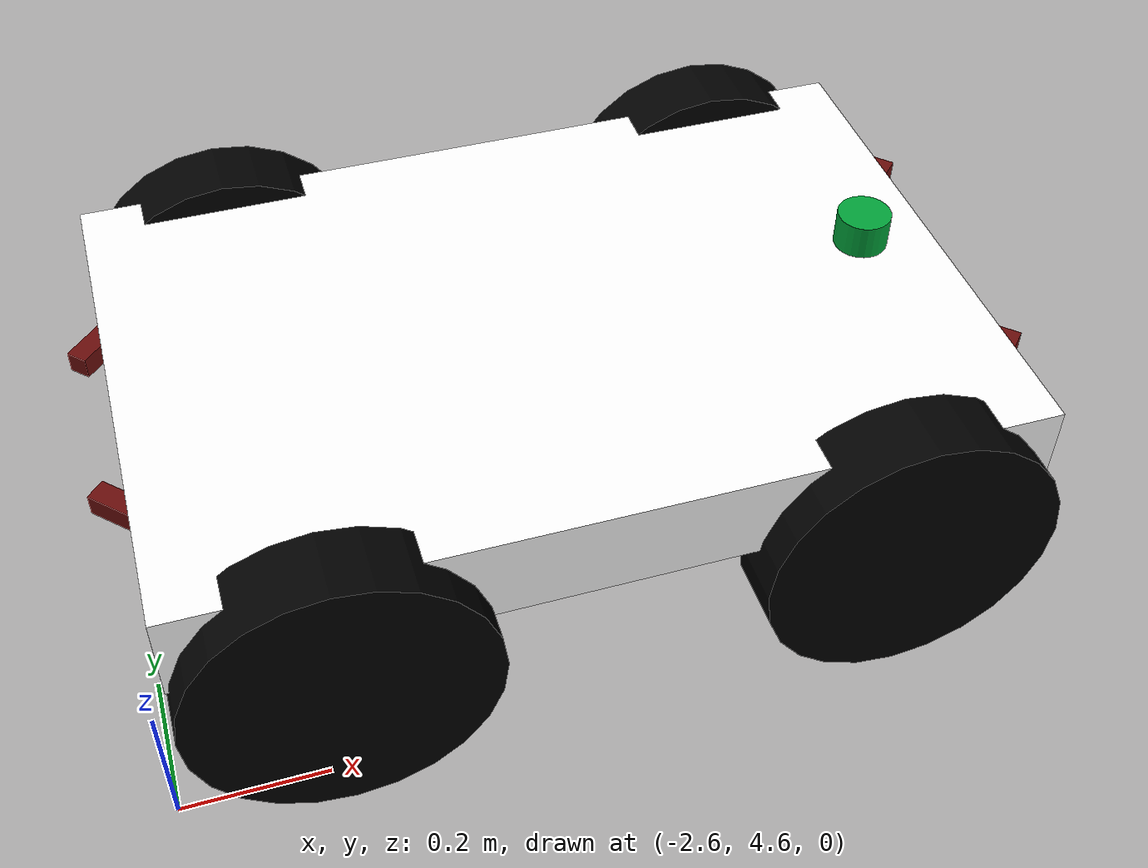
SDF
<sdf version="1.7">
 <world name="default">
  <gravity>0 0 -9.8</gravity>
  <magnetic_field>6e-06 2.3e-05 -4.2e-05</magnetic_field>
  <atmosphere type="adiabatic"/>
  <physics name="default_physics" default="0" type="ode">
   <max_step_size>0.001</max_step_size>
   <real_time_factor>1</real_time_factor>
   <real_time_update_rate>1000</real_time_update_rate>
  </physics>
  <scene>
   <ambient>0.4 0.4 0.4 1</ambient>
   <background>0.7 0.7 0.7 1</background>
   <shadows>1</shadows>
   <grid>0</grid>
   <origin_visual>0</origin_visual>
  </scene>
  <spherical_coordinates>
   <surface_model>EARTH_WGS84</surface_model>
   <latitude_deg>0</latitude_deg>
   <longitude_deg>0</longitude_deg>
   <elevation>0</elevation>
   <heading_deg>0</heading_deg>
  </spherical_coordinates>
  <light name="RetailShop_CeilingLight_001" type="point">
   <pose>2.77442 -3.62815 3.17847 0 -0 0</pose>
   <diffuse>0.5 0.5 0.5 1</diffuse>
   <specular>0.1 0.1 0.1 1</specular>
   <attenuation>
    <range>20</range>
    <constant>0.32</constant>
    <linear>0.01</linear>
    <quadratic>0.03</quadratic>
   </attenuation>
   <cast_shadows>0</cast_shadows>
   <direction>0 0 -1</direction>
   <spot><inner_angle>0</inner_angle><outer_angle>0</outer_angle><falloff>0</falloff></spot>
  </light>
  <light name="RetailShop_CeilingLight_002" type="point">
   <pose>5.38399 -5.38371 3.17847 0 -0 0</pose>
   <diffuse>0.5 0.5 0.5 1</diffuse>
   <specular>0.1 0.1 0.1 1</specular>
   <attenuation>
    <range>20</range>
    <constant>0.32</constant>
    <linear>0.01</linear>
    <quadratic>0.03</quadratic>
   </attenuation>
   <cast_shadows>0</cast_shadows>
   <direction>0 0 -1</direction>
   <spot><inner_angle>0</inner_angle><outer_angle>0</outer_angle><falloff>0</falloff></spot>
  </light>
  <light name="RetailShop_CeilingLight_003" type="point">
   <pose>5.38399 0.04192 3.17847 0 -0 0</pose>
   <diffuse>0.5 0.5 0.5 1</diffuse>
   <specular>0.1 0.1 0.1 1</specular>
   <attenuation>
    <range>20</range>
    <constant>0.32</constant>
    <linear>0.01</linear>
    <quadratic>0.03</quadratic>
   </attenuation>
   <cast_shadows>0</cast_shadows>
   <direction>0 0 -1</direction>
   <spot><inner_angle>0</inner_angle><outer_angle>0</outer_angle><falloff>0</falloff></spot>
  </light>
  <light name="RetailShop_CeilingLight_004" type="point">
   <pose>-3.21067 -5.38371 3.17847 0 -0 0</pose>
   <diffuse>0.5 0.5 0.5 1</diffuse>
   <specular>0.1 0.1 0.1 1</specular>
   <attenuation>
    <range>20</range>
    <constant>0.32</constant>
    <linear>0.01</linear>
    <quadratic>0.03</quadratic>
   </attenuation>
   <cast_shadows>0</cast_shadows>
   <direction>0 0 -1</direction>
   <spot><inner_angle>0</inner_angle><outer_angle>0</outer_angle><falloff>0</falloff></spot>
  </light>
  <light name="RetailShop_CeilingLight_005" type="point">
   <pose>-3.271 2.68593 3.17847 0 -0 0</pose>
   <diffuse>0.5 0.5 0.5 1</diffuse>
   <specular>0.1 0.1 0.1 1</specular>
   <attenuation>
    <range>20</range>
    <constant>0.32</constant>
    <linear>0.01</linear>
    <quadratic>0.03</quadratic>
   </attenuation>
   <cast_shadows>0</cast_shadows>
   <direction>0 0 -1</direction>
   <spot><inner_angle>0</inner_angle><outer_angle>0</outer_angle><falloff>0</falloff></spot>
  </light>
  <light name="RetailShop_CeilingLight_006" type="point">
   <pose>1.4932 4.69237 3.17847 0 -0 0</pose>
   <diffuse>0.5 0.5 0.5 1</diffuse>
   <specular>0.1 0.1 0.1 1</specular>
   <attenuation>
    <range>20</range>
    <constant>0.32</constant>
    <linear>0.01</linear>
    <quadratic>0.03</quadratic>
   </attenuation>
   <cast_shadows>0</cast_shadows>
   <direction>0 0 -1</direction>
   <spot><inner_angle>0</inner_angle><outer_angle>0</outer_angle><falloff>0</falloff></spot>
  </light>
  <audio><device>default</device></audio>
  <model name="p4_amr">
   <link name="base_footprint">
    <inertial>
     <pose>0.001361 -0.001731 0.303659 0 -0 0</pose>
     <mass>50.91</mass>
     <inertia>
      <ixx>2.57288</ixx>
      <ixy>0.00715369</ixy>
      <ixz>-0.00592129</ixz>
      <iyy>5.83598</iyy>
      <iyz>0.00119733</iyz>
      <izz>8.26683</izz>
     </inertia>
    </inertial>
    <collision name="base_footprint_fixed_joint_lump__base_link_collision">
     <pose>0 0 0.3032 0 -0 0</pose>
     <geometry><box><size>1.154 0.768 0.129</size></box></geometry>
    </collision>
    <collision name="base_footprint_fixed_joint_lump__camera_1_link_collision_1">
     <pose>0.57 0.167 0.317248 0 0 -0.7853</pose>
     <geometry><box><size>0.03 0.124 0.03</size></box></geometry>
    </collision>
    <collision name="base_footprint_fixed_joint_lump__camera_2_link_collision_2">
     <pose>0.57 -0.167 0.317248 0 -0 0.7853</pose>
     <geometry><box><size>0.03 0.124 0.03</size></box></geometry>
    </collision>
    <collision name="base_footprint_fixed_joint_lump__camera_3_link_collision_3">
     <pose>0.328397 -0.326339 0.317248 0 0 -2.44346</pose>
     <geometry><box><size>0.03 0.124 0.03</size></box></geometry>
    </collision>
    <collision name="base_footprint_fixed_joint_lump__camera_4_link_collision_4">
     <pose>-0.163297 -0.326339 0.317248 0 0 -0.698132</pose>
     <geometry><box><size>0.03 0.124 0.03</size></box></geometry>
    </collision>
    <collision name="base_footprint_fixed_joint_lump__camera_5_link_collision_5">
     <pose>-0.57 -0.167 0.317248 0 0 -2.35619</pose>
     <geometry><box><size>0.03 0.124 0.03</size></box></geometry>
    </collision>
    <collision name="base_footprint_fixed_joint_lump__camera_6_link_collision_6">
     <pose>-0.57 0.167 0.317248 0 -0 2.35619</pose>
     <geometry><box><size>0.03 0.124 0.03</size></box></geometry>
    </collision>
    <collision name="base_footprint_fixed_joint_lump__laser_collision_7">
     <pose>0.47 0 0.3982 0 -0 0</pose>
     <geometry><cylinder><length>0.05</length><radius>0.0375</radius></cylinder></geometry>
    </collision>
    <visual name="base_footprint_fixed_joint_lump__base_link_visual">
     <pose>0 0 0.3032 0 -0 0</pose>
     <geometry><box><size>1.154 0.768 0.129</size></box></geometry>
     <material><ambient>1 1 1 1</ambient><diffuse>1 1 1 1</diffuse><specular>0.99 0.99 0.99 1</specular></material>
    </visual>
    <visual name="base_footprint_fixed_joint_lump__camera_1_link_visual_1">
     <pose>0.57 0.167 0.317248 0 0 -0.7853</pose>
     <geometry><box><size>0.03 0.124 0.03</size></box></geometry>
     <material>
      <ambient>0.416 0.051 0.047 1</ambient>
      <diffuse>0.416 0.051 0.047 1</diffuse>
      <specular>0.416 0.051 0.047 1</specular>
      <emissive>0.416 0.051 0.047 1</emissive>
     </material>
    </visual>
    <visual name="base_footprint_fixed_joint_lump__camera_2_link_visual_2">
     <pose>0.57 -0.167 0.317248 0 -0 0.7853</pose>
     <geometry><box><size>0.03 0.124 0.03</size></box></geometry>
     <material>
      <ambient>0.416 0.051 0.047 1</ambient>
      <diffuse>0.416 0.051 0.047 1</diffuse>
      <specular>0.416 0.051 0.047 1</specular>
      <emissive>0.416 0.051 0.047 1</emissive>
     </material>
    </visual>
    <visual name="base_footprint_fixed_joint_lump__camera_3_link_visual_3">
     <pose>0.328397 -0.326339 0.317248 0 0 -2.44346</pose>
     <geometry><box><size>0.03 0.124 0.03</size></box></geometry>
     <material>
      <ambient>0.416 0.051 0.047 1</ambient>
      <diffuse>0.416 0.051 0.047 1</diffuse>
      <specular>0.416 0.051 0.047 1</specular>
      <emissive>0.416 0.051 0.047 1</emissive>
     </material>
    </visual>
    <visual name="base_footprint_fixed_joint_lump__camera_4_link_visual_4">
     <pose>-0.163297 -0.326339 0.317248 0 0 -0.698132</pose>
     <geometry><box><size>0.03 0.124 0.03</size></box></geometry>
     <material>
      <ambient>0.416 0.051 0.047 1</ambient>
      <diffuse>0.416 0.051 0.047 1</diffuse>
      <specular>0.416 0.051 0.047 1</specular>
      <emissive>0.416 0.051 0.047 1</emissive>
     </material>
    </visual>
    <visual name="base_footprint_fixed_joint_lump__camera_5_link_visual_5">
     <pose>-0.57 -0.167 0.317248 0 0 -2.35619</pose>
     <geometry><box><size>0.03 0.124 0.03</size></box></geometry>
     <material>
      <ambient>0.416 0.051 0.047 1</ambient>
      <diffuse>0.416 0.051 0.047 1</diffuse>
      <specular>0.416 0.051 0.047 1</specular>
      <emissive>0.416 0.051 0.047 1</emissive>
     </material>
    </visual>
    <visual name="base_footprint_fixed_joint_lump__camera_6_link_visual_6">
     <pose>-0.57 0.167 0.317248 0 -0 2.35619</pose>
     <geometry><box><size>0.03 0.124 0.03</size></box></geometry>
     <material>
      <ambient>0.416 0.051 0.047 1</ambient>
      <diffuse>0.416 0.051 0.047 1</diffuse>
      <specular>0.416 0.051 0.047 1</specular>
      <emissive>0.416 0.051 0.047 1</emissive>
     </material>
    </visual>
    <visual name="base_footprint_fixed_joint_lump__laser_visual_7">
     <pose>0.47 0 0.3982 0 -0 0</pose>
     <geometry><cylinder><length>0.05</length><radius>0.0375</radius></cylinder></geometry>
     <material>
      <ambient>0.003 0.639 0.223 1</ambient>
      <diffuse>0.003 0.639 0.223 1</diffuse>
      <specular>0.003 0.639 0.223 1</specular>
      <emissive>0 0 0 0</emissive>
     </material>
    </visual>
    <sensor name="camera_1" type="depth">
     <always_on>1</always_on>
     <update_rate>30</update_rate>
     <camera name="camera_1">
      <horizontal_fov>1.50098</horizontal_fov>
      <image><width>640</width><height>480</height><format>R8G8B8</format></image>
      <clip><near>0.1</near><far>100</far></clip>
     </camera>
     <plugin name="camera_1_controller" filename="libgazebo_ros_camera.so">
      <ros>
       <remapping>/camera_1/camera_info:=/camera_1/color/camera_info</remapping>
       <remapping>/camera_1/image_raw:=/camera_1/color/image_raw</remapping>
       <remapping>/camera_1/points:=/camera_1/depth/color/points</remapping>
       <remapping>/camera_1/depth/image_raw:=/camera_1/depth/image_rect_raw</remapping>
      </ros>
      <min_depth>0.015</min_depth>
      <max_depth>3.0</max_depth>
      <hack_baseline>0.07</hack_baseline>
      <frame_name>camera_1_depth_link</frame_name>
      <distortion_k1>0.00000001</distortion_k1>
      <distortion_k2>0.00000001</distortion_k2>
      <distortion_k3>0.00000001</distortion_k3>
      <distortion_t1>0.00000001</distortion_t1>
      <distortion_t2>0.00000001</distortion_t2>
     </plugin>
     <pose>0.57 0.167 0.317248 0 0 -0.7853</pose>
    </sensor>
    <sensor name="camera_2" type="depth">
     <always_on>1</always_on>
     <update_rate>30</update_rate>
     <camera name="camera_2">
      <horizontal_fov>1.50098</horizontal_fov>
      <image><width>640</width><height>480</height><format>R8G8B8</format></image>
      <clip><near>0.1</near><far>100</far></clip>
     </camera>
     <plugin name="camera_2_controller" filename="libgazebo_ros_camera.so">
      <ros>
       <remapping>/camera_2/camera_info:=/camera_2/color/camera_info</remapping>
       <remapping>/camera_2/image_raw:=/camera_2/color/image_raw</remapping>
       <remapping>/camera_2/points:=/camera_2/depth/color/points</remapping>
       <remapping>/camera_2/depth/image_raw:=/camera_2/depth/image_rect_raw</remapping>
      </ros>
      <min_depth>0.015</min_depth>
      <max_depth>3.0</max_depth>
      <hack_baseline>0.07</hack_baseline>
      <frame_name>camera_2_depth_link</frame_name>
      <distortion_k1>0.00000001</distortion_k1>
      <distortion_k2>0.00000001</distortion_k2>
      <distortion_k3>0.00000001</distortion_k3>
      <distortion_t1>0.00000001</distortion_t1>
      <distortion_t2>0.00000001</distortion_t2>
     </plugin>
     <pose>0.57 -0.167 0.317248 0 -0 0.7853</pose>
    </sensor>
    <sensor name="camera_3" type="depth">
     <always_on>1</always_on>
     <update_rate>30</update_rate>
     <camera name="camera_3">
      <horizontal_fov>1.50098</horizontal_fov>
      <image><width>640</width><height>480</height><format>R8G8B8</format></image>
      <clip><near>0.1</near><far>100</far></clip>
     </camera>
     <plugin name="camera_3_controller" filename="libgazebo_ros_camera.so">
      <ros>
       <remapping>/camera_3/camera_info:=/camera_3/color/camera_info</remapping>
       <remapping>/camera_3/image_raw:=/camera_3/color/image_raw</remapping>
       <remapping>/camera_3/points:=/camera_3/depth/color/points</remapping>
       <remapping>/camera_3/depth/image_raw:=/camera_3/depth/image_rect_raw</remapping>
      </ros>
      <min_depth>0.015</min_depth>
      <max_depth>3.0</max_depth>
      <hack_baseline>0.07</hack_baseline>
      <frame_name>camera_3_depth_link</frame_name>
      <distortion_k1>0.00000001</distortion_k1>
      <distortion_k2>0.00000001</distortion_k2>
      <distortion_k3>0.00000001</distortion_k3>
      <distortion_t1>0.00000001</distortion_t1>
      <distortion_t2>0.00000001</distortion_t2>
     </plugin>
     <pose>0.328397 -0.326339 0.317248 0 0 -2.44346</pose>
    </sensor>
    <sensor name="camera_4" type="depth">
     <always_on>1</always_on>
     <update_rate>30</update_rate>
     <camera name="camera_4">
      <horizontal_fov>1.50098</horizontal_fov>
      <image><width>640</width><height>480</height><format>R8G8B8</format></image>
      <clip><near>0.1</near><far>100</far></clip>
     </camera>
     <plugin name="camera_4_controller" filename="libgazebo_ros_camera.so">
      <ros>
       <remapping>/camera_4/camera_info:=/camera_4/color/camera_info</remapping>
       <remapping>/camera_4/image_raw:=/camera_4/color/image_raw</remapping>
       <remapping>/camera_4/points:=/camera_4/depth/color/points</remapping>
       <remapping>/camera_4/depth/image_raw:=/camera_4/depth/image_rect_raw</remapping>
      </ros>
      <min_depth>0.015</min_depth>
      <max_depth>3.0</max_depth>
      <hack_baseline>0.07</hack_baseline>
      <frame_name>camera_4_depth_link</frame_name>
      <distortion_k1>0.00000001</distortion_k1>
      <distortion_k2>0.00000001</distortion_k2>
      <distortion_k3>0.00000001</distortion_k3>
      <distortion_t1>0.00000001</distortion_t1>
      <distortion_t2>0.00000001</distortion_t2>
     </plugin>
     <pose>-0.163297 -0.326339 0.317248 0 0 -0.698132</pose>
    </sensor>
    <sensor name="camera_5" type="depth">
     <always_on>1</always_on>
     <update_rate>30</update_rate>
     <camera name="camera_5">
      <horizontal_fov>1.50098</horizontal_fov>
      <image><width>640</width><height>480</height><format>R8G8B8</format></image>
      <clip><near>0.1</near><far>100</far></clip>
     </camera>
     <plugin name="camera_5_controller" filename="libgazebo_ros_camera.so">
      <ros>
       <remapping>/camera_5/camera_info:=/camera_5/color/camera_info</remapping>
       <remapping>/camera_5/image_raw:=/camera_5/color/image_raw</remapping>
       <remapping>/camera_5/points:=/camera_5/depth/color/points</remapping>
       <remapping>/camera_5/depth/image_raw:=/camera_5/depth/image_rect_raw</remapping>
      </ros>
      <min_depth>0.015</min_depth>
      <max_depth>3.0</max_depth>
      <hack_baseline>0.07</hack_baseline>
      <frame_name>camera_5_depth_link</frame_name>
      <distortion_k1>0.00000001</distortion_k1>
      <distortion_k2>0.00000001</distortion_k2>
      <distortion_k3>0.00000001</distortion_k3>
      <distortion_t1>0.00000001</distortion_t1>
      <distortion_t2>0.00000001</distortion_t2>
     </plugin>
     <pose>-0.57 -0.167 0.317248 0 0 -2.35619</pose>
    </sensor>
    <sensor name="camera_6" type="depth">
     <always_on>1</always_on>
     <update_rate>30</update_rate>
     <camera name="camera_6">
      <horizontal_fov>1.50098</horizontal_fov>
      <image><width>640</width><height>480</height><format>R8G8B8</format></image>
      <clip><near>0.1</near><far>100</far></clip>
     </camera>
     <plugin name="camera_6_controller" filename="libgazebo_ros_camera.so">
      <ros>
       <remapping>/camera_6/camera_info:=/camera_6/color/camera_info</remapping>
       <remapping>/camera_6/image_raw:=/camera_6/color/image_raw</remapping>
       <remapping>/camera_6/points:=/camera_6/depth/color/points</remapping>
       <remapping>/camera_6/depth/image_raw:=/camera_6/depth/image_rect_raw</remapping>
      </ros>
      <min_depth>0.015</min_depth>
      <max_depth>3.0</max_depth>
      <hack_baseline>0.07</hack_baseline>
      <frame_name>camera_6_depth_link</frame_name>
      <distortion_k1>0.00000001</distortion_k1>
      <distortion_k2>0.00000001</distortion_k2>
      <distortion_k3>0.00000001</distortion_k3>
      <distortion_t1>0.00000001</distortion_t1>
      <distortion_t2>0.00000001</distortion_t2>
     </plugin>
     <pose>-0.57 0.167 0.317248 0 -0 2.35619</pose>
    </sensor>
    <sensor name="imu_sensor" type="imu">
     <always_on>1</always_on>
     <update_rate>20</update_rate>
     <visualize>1</visualize>
     <topic>__default_topic__</topic>
     <plugin name="imu_plugin" filename="libgazebo_ros_imu_sensor.so">
      <ros><remapping>~/out:=imu/data</remapping></ros>
      <topicName>imu/data</topicName>
      <bodyName>imu_link</bodyName>
      <update_rate>100</update_rate>
      <frameName>imu_link</frameName>
      <initial_orientation_as_reference>0</initial_orientation_as_reference>
     </plugin>
     <pose>0 0 0.3032 0 -0 0</pose>
    </sensor>
    <sensor name="rplidar" type="ray">
     <always_on>1</always_on>
     <update_rate>10</update_rate>
     <visualize>1</visualize>
     <ray>
      <scan>
       <horizontal>
        <samples>720</samples>
        <resolution>0.1</resolution>
        <min_angle>0</min_angle>
        <max_angle>6.28</max_angle>
       </horizontal>
       <vertical><samples>1</samples><min_angle>0</min_angle><max_angle>0</max_angle></vertical>
      </scan>
      <range><min>0.05</min><max>40</max><resolution>0.1</resolution></range>
     </ray>
     <plugin name="laser" filename="libgazebo_ros_ray_sensor.so">
      <ros><remapping>~/out:=scan</remapping></ros>
      <output_type>sensor_msgs/LaserScan</output_type>
      <always_on>1</always_on>
      <update_rate>10</update_rate>
      <frame_name>laser</frame_name>
     </plugin>
     <pose>0.47 0 0.4232 0 -0 0</pose>
    </sensor>
   </link>
   <joint name="front_left_wheel_joint" type="revolute">
    <pose relative_to="base_footprint">0.3738 0.384 0.2032 0 -0 0</pose>
    <parent>base_footprint</parent>
    <child>front_left_wheel_link</child>
    <axis>
     <xyz>0 1 0</xyz>
     <limit><lower>-1e+16</lower><upper>1e+16</upper></limit>
     <dynamics><spring_reference>0</spring_reference><spring_stiffness>0</spring_stiffness></dynamics>
    </axis>
   </joint>
   <link name="front_left_wheel_link">
    <pose relative_to="front_left_wheel_joint">0 0 0 0 -0 0</pose>
    <inertial>
     <mass>0.6</mass>
     <inertia>
      <ixx>0.00990966</ixx>
      <ixy>0</ixy>
      <ixz>0</ixz>
      <iyy>0.00990966</iyy>
      <iyz>0</iyz>
      <izz>0.00990966</izz>
     </inertia>
    </inertial>
    <collision name="front_left_wheel_link_collision">
     <pose>0 0 0 1.5708 -0 0</pose>
     <geometry><cylinder><length>0.1</length><radius>0.2032</radius></cylinder></geometry>
     <surface><friction><ode><mu>0.01</mu><mu2>0.01</mu2></ode></friction></surface>
    </collision>
    <visual name="front_left_wheel_link_visual">
     <pose>0 0 0 1.5708 -0 0</pose>
     <geometry><cylinder><length>0.1</length><radius>0.2032</radius></cylinder></geometry>
     <material>
      <ambient>0 0 0 1</ambient>
      <diffuse>0 0 0 1</diffuse>
      <specular>0 0 0 1</specular>
      <emissive>0 0 0 0</emissive>
     </material>
    </visual>
   </link>
   <joint name="front_right_wheel_joint" type="revolute">
    <pose relative_to="base_footprint">0.3738 -0.384 0.2032 0 -0 0</pose>
    <parent>base_footprint</parent>
    <child>front_right_wheel_link</child>
    <axis>
     <xyz>0 1 0</xyz>
     <limit><lower>-1e+16</lower><upper>1e+16</upper></limit>
     <dynamics><spring_reference>0</spring_reference><spring_stiffness>0</spring_stiffness></dynamics>
    </axis>
   </joint>
   <link name="front_right_wheel_link">
    <pose relative_to="front_right_wheel_joint">0 0 0 0 -0 0</pose>
    <inertial>
     <mass>0.6</mass>
     <inertia>
      <ixx>0.00990966</ixx>
      <ixy>0</ixy>
      <ixz>0</ixz>
      <iyy>0.00990966</iyy>
      <iyz>0</iyz>
      <izz>0.00990966</izz>
     </inertia>
    </inertial>
    <collision name="front_right_wheel_link_collision">
     <pose>0 0 0 1.5708 -0 0</pose>
     <geometry><cylinder><length>0.1</length><radius>0.2032</radius></cylinder></geometry>
     <surface><friction><ode><mu>0.01</mu><mu2>0.01</mu2></ode></friction></surface>
    </collision>
    <visual name="front_right_wheel_link_visual">
     <pose>0 0 0 1.5708 -0 0</pose>
     <geometry><cylinder><length>0.1</length><radius>0.2032</radius></cylinder></geometry>
     <material>
      <ambient>0 0 0 1</ambient>
      <diffuse>0 0 0 1</diffuse>
      <specular>0 0 0 1</specular>
      <emissive>0 0 0 0</emissive>
     </material>
    </visual>
   </link>
   <joint name="rear_left_wheel_joint" type="revolute">
    <pose relative_to="base_footprint">-0.3738 0.384 0.2032 0 -0 0</pose>
    <parent>base_footprint</parent>
    <child>rear_left_wheel_link</child>
    <axis>
     <xyz>0 1 0</xyz>
     <limit><lower>-1e+16</lower><upper>1e+16</upper></limit>
     <dynamics><spring_reference>0</spring_reference><spring_stiffness>0</spring_stiffness></dynamics>
    </axis>
   </joint>
   <link name="rear_left_wheel_link">
    <pose relative_to="rear_left_wheel_joint">0 0 0 0 -0 0</pose>
    <inertial>
     <mass>0.6</mass>
     <inertia>
      <ixx>0.00990966</ixx>
      <ixy>0</ixy>
      <ixz>0</ixz>
      <iyy>0.00990966</iyy>
      <iyz>0</iyz>
      <izz>0.00990966</izz>
     </inertia>
    </inertial>
    <collision name="rear_left_wheel_link_collision">
     <pose>0 0 0 1.5708 -0 0</pose>
     <geometry><cylinder><length>0.1</length><radius>0.2032</radius></cylinder></geometry>
     <surface><friction><ode><mu>0.01</mu><mu2>0.01</mu2></ode></friction></surface>
    </collision>
    <visual name="rear_left_wheel_link_visual">
     <pose>0 0 0 1.5708 -0 0</pose>
     <geometry><cylinder><length>0.1</length><radius>0.2032</radius></cylinder></geometry>
     <material>
      <ambient>0 0 0 1</ambient>
      <diffuse>0 0 0 1</diffuse>
      <specular>0 0 0 1</specular>
      <emissive>0 0 0 0</emissive>
     </material>
    </visual>
   </link>
   <joint name="rear_right_wheel_joint" type="revolute">
    <pose relative_to="base_footprint">-0.3738 -0.384 0.2032 0 -0 0</pose>
    <parent>base_footprint</parent>
    <child>rear_right_wheel_link</child>
    <axis>
     <xyz>0 1 0</xyz>
     <limit><lower>-1e+16</lower><upper>1e+16</upper></limit>
     <dynamics><spring_reference>0</spring_reference><spring_stiffness>0</spring_stiffness></dynamics>
    </axis>
   </joint>
   <link name="rear_right_wheel_link">
    <pose relative_to="rear_right_wheel_joint">0 0 0 0 -0 0</pose>
    <inertial>
     <mass>0.6</mass>
     <inertia>
      <ixx>0.00990966</ixx>
      <ixy>0</ixy>
      <ixz>0</ixz>
      <iyy>0.00990966</iyy>
      <iyz>0</iyz>
      <izz>0.00990966</izz>
     </inertia>
    </inertial>
    <collision name="rear_right_wheel_link_collision">
     <pose>0 0 0 1.5708 -0 0</pose>
     <geometry><cylinder><length>0.1</length><radius>0.2032</radius></cylinder></geometry>
     <surface><friction><ode><mu>0.01</mu><mu2>0.01</mu2></ode></friction></surface>
    </collision>
    <visual name="rear_right_wheel_link_visual">
     <pose>0 0 0 1.5708 -0 0</pose>
     <geometry><cylinder><length>0.1</length><radius>0.2032</radius></cylinder></geometry>
     <material>
      <ambient>0 0 0 1</ambient>
      <diffuse>0 0 0 1</diffuse>
      <specular>0 0 0 1</specular>
      <emissive>0 0 0 0</emissive>
     </material>
    </visual>
   </link>
   <static>0</static>
   <plugin name="object_controller" filename="libgazebo_ros_planar_move.so">
    <ros><remapping>cmd_vel:=cmd_vel</remapping><remapping>odom:=odom</remapping></ros>
    <update_rate>100</update_rate>
    <publish_rate>100</publish_rate>
    <publish_odom>1</publish_odom>
    <publish_odom_tf>1</publish_odom_tf>
    <odometry_frame>odom</odometry_frame>
    <robot_base_frame>base_link</robot_base_frame>
    <covariance_x>0.0000001</covariance_x>
    <covariance_y>0.0000001</covariance_y>
    <covariance_yaw>0.0000001</covariance_yaw>
   </plugin>
   <pose>-1.9999 4.98044 0.013372 -2.7e-05 1e-06 0.000696</pose>
  </model>
 </world>
</sdf>
